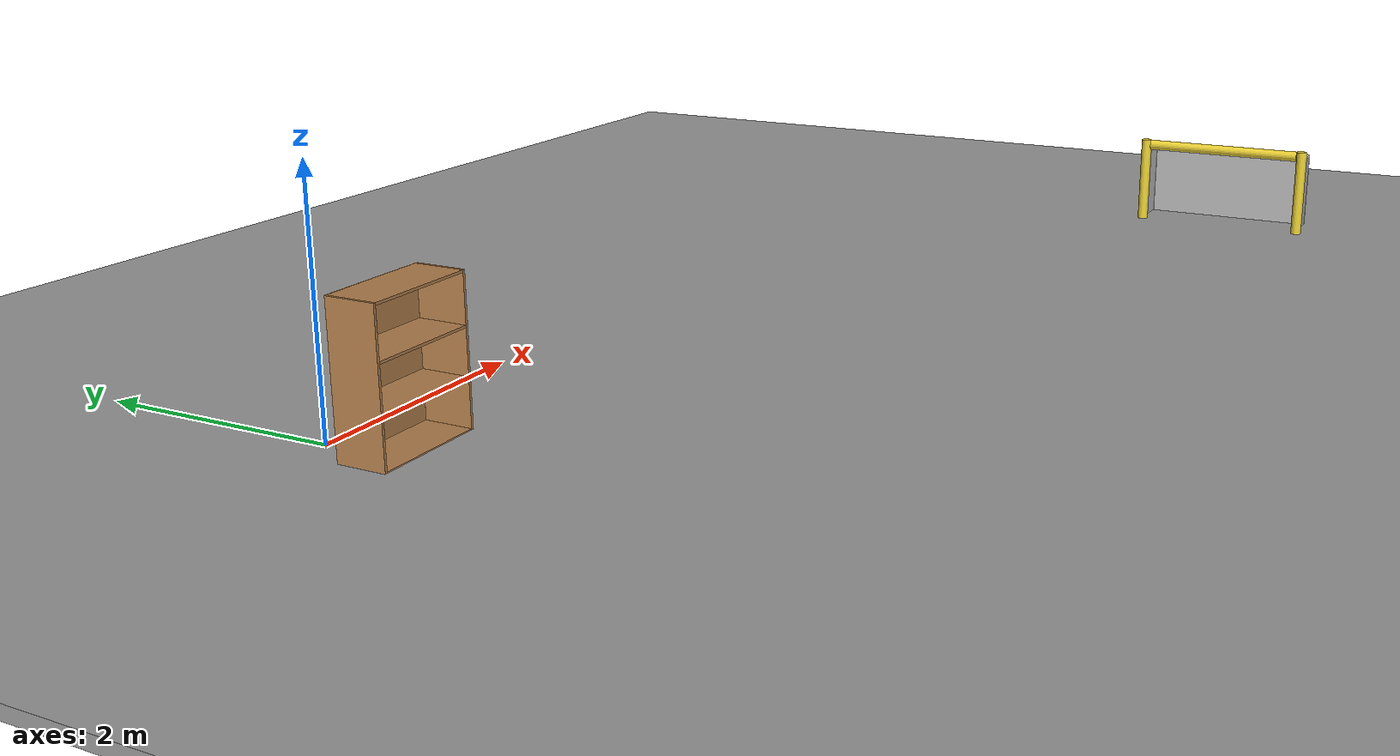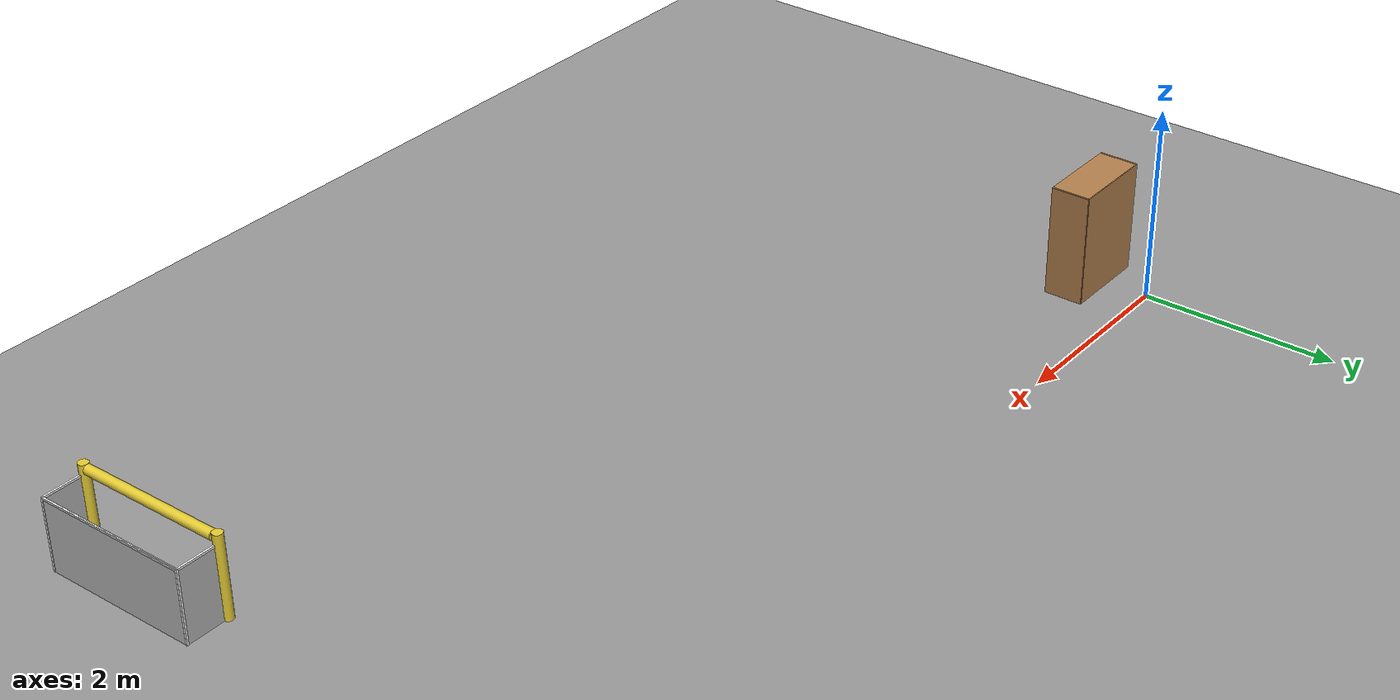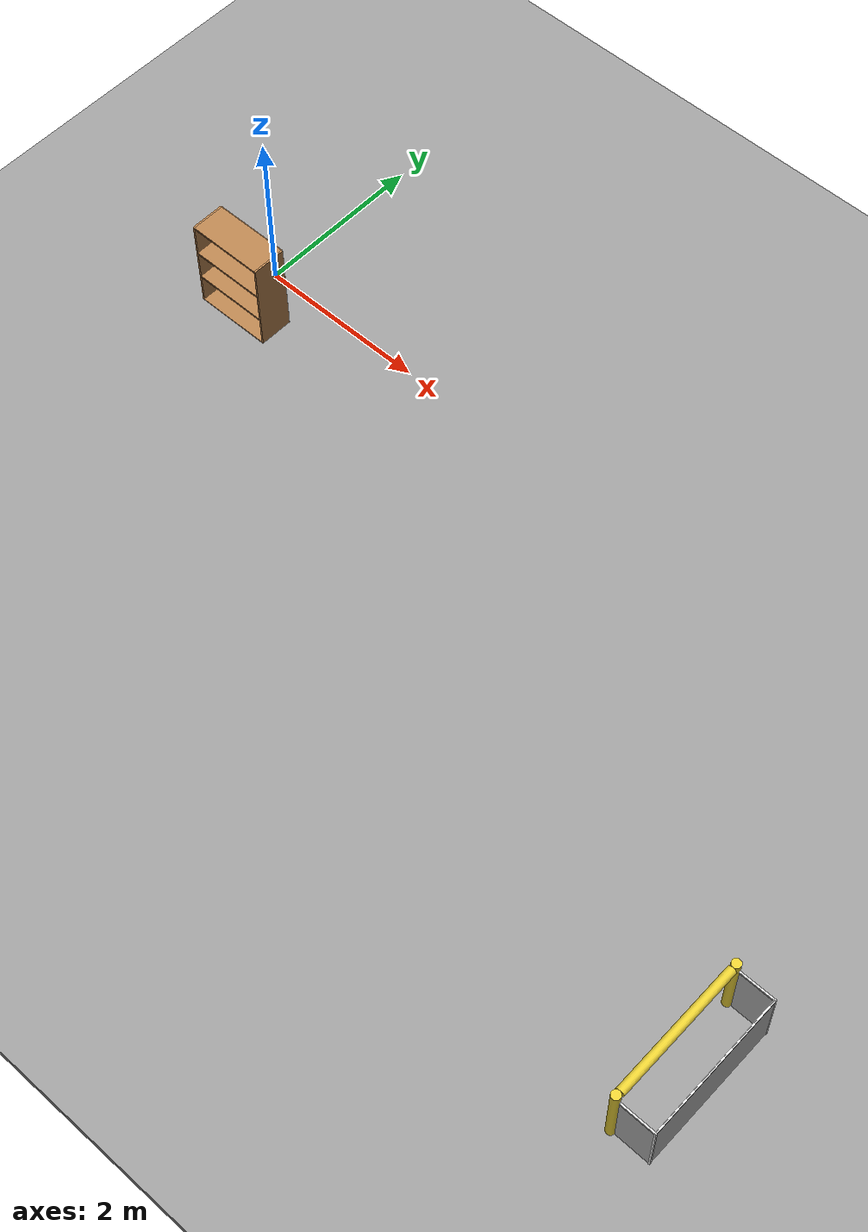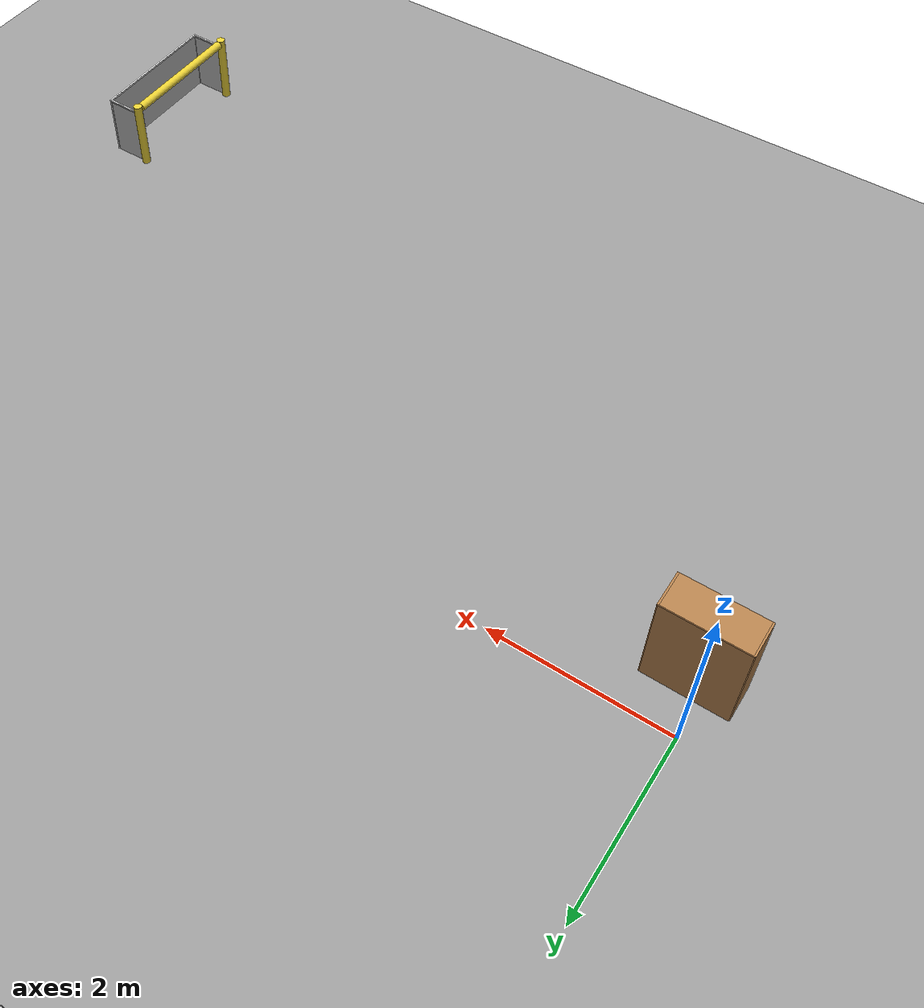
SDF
<sdf version="1.6">
 <world name="default">
  <model name="ground_plane">
   <static>1</static>
   <link name="link">
    <collision name="collision">
     <geometry><plane><normal>0 0 1</normal><size>100 100</size></plane></geometry>
     <surface><friction><ode><mu>100</mu><mu2>50</mu2></ode></friction></surface>
    </collision>
    <visual name="visual">
     <cast_shadows>0</cast_shadows>
     <geometry><plane><normal>0 0 1</normal><size>100 100</size></plane></geometry>
     <material>
      <script><uri>file://media/materials/scripts/gazebo.material</uri><name>Gazebo/Grey</name></script>
     </material>
    </visual>
   </link>
  </model>
  <model name="bookshelf">
   <static>1</static>
   <link name="link">
    <inertial><mass>1</mass></inertial>
    <collision name="back">
     <pose>0 0.005 0.6 0 -0 0</pose>
     <geometry><box><size>0.9 0.01 1.2</size></box></geometry>
    </collision>
    <visual name="visual1">
     <pose>0 0.005 0.6 0 -0 0</pose>
     <geometry><box><size>0.9 0.01 1.2</size></box></geometry>
     <material>
      <script><uri>file://media/materials/scripts/gazebo.material</uri><name>Gazebo/Wood</name></script>
     </material>
    </visual>
    <collision name="left_side">
     <pose>0.45 -0.195 0.6 0 -0 0</pose>
     <geometry><box><size>0.02 0.4 1.2</size></box></geometry>
    </collision>
    <visual name="visual2">
     <pose>0.45 -0.195 0.6 0 -0 0</pose>
     <geometry><box><size>0.02 0.4 1.2</size></box></geometry>
     <material>
      <script><uri>file://media/materials/scripts/gazebo.material</uri><name>Gazebo/Wood</name></script>
     </material>
    </visual>
    <collision name="right_side">
     <pose>-0.45 -0.195 0.6 0 -0 0</pose>
     <geometry><box><size>0.02 0.4 1.2</size></box></geometry>
    </collision>
    <visual name="visual3">
     <pose>-0.45 -0.195 0.6 0 -0 0</pose>
     <geometry><box><size>0.02 0.4 1.2</size></box></geometry>
     <material>
      <script><uri>file://media/materials/scripts/gazebo.material</uri><name>Gazebo/Wood</name></script>
     </material>
    </visual>
    <collision name="bottom">
     <pose>0 -0.195 0.03 0 -0 0</pose>
     <geometry><box><size>0.88 0.4 0.06</size></box></geometry>
    </collision>
    <visual name="visual4">
     <pose>0 -0.195 0.03 0 -0 0</pose>
     <geometry><box><size>0.88 0.4 0.06</size></box></geometry>
     <material>
      <script><uri>file://media/materials/scripts/gazebo.material</uri><name>Gazebo/Wood</name></script>
     </material>
    </visual>
    <collision name="top">
     <pose>0 -0.195 1.19 0 -0 0</pose>
     <geometry><box><size>0.88 0.4 0.02</size></box></geometry>
    </collision>
    <visual name="visual5">
     <pose>0 -0.195 1.19 0 -0 0</pose>
     <geometry><box><size>0.88 0.4 0.02</size></box></geometry>
     <material>
      <script><uri>file://media/materials/scripts/gazebo.material</uri><name>Gazebo/Wood</name></script>
     </material>
    </visual>
    <collision name="low_shelf">
     <pose>0 -0.195 0.43 0 -0 0</pose>
     <geometry><box><size>0.88 0.4 0.02</size></box></geometry>
    </collision>
    <visual name="visual6">
     <pose>0 -0.195 0.43 0 -0 0</pose>
     <geometry><box><size>0.88 0.4 0.02</size></box></geometry>
     <material>
      <script><uri>file://media/materials/scripts/gazebo.material</uri><name>Gazebo/Wood</name></script>
     </material>
    </visual>
    <collision name="high_shelf">
     <pose>0 -0.195 0.8 0 -0 0</pose>
     <geometry><box><size>0.88 0.4 0.02</size></box></geometry>
    </collision>
    <visual name="visual7">
     <pose>0 -0.195 0.8 0 -0 0</pose>
     <geometry><box><size>0.88 0.4 0.02</size></box></geometry>
     <material>
      <script><uri>file://media/materials/scripts/gazebo.material</uri><name>Gazebo/Wood</name></script>
     </material>
    </visual>
   </link>
   <pose>0.140039 -0.394425 0 0 -0 0</pose>
  </model>
  <model name="ground_plane_0">
   <static>1</static>
   <link name="link">
    <collision name="collision">
     <geometry><plane><normal>0 0 1</normal><size>100 100</size></plane></geometry>
     <surface><friction><ode><mu>100</mu><mu2>50</mu2></ode></friction></surface>
    </collision>
    <visual name="visual">
     <cast_shadows>0</cast_shadows>
     <geometry><plane><normal>0 0 1</normal><size>100 100</size></plane></geometry>
     <material>
      <script><uri>file://media/materials/scripts/gazebo.material</uri><name>Gazebo/Grey</name></script>
     </material>
    </visual>
   </link>
   <pose>11.2711 2.15134 0 0 -0 0</pose>
  </model>
  <model name="RoboCup 2014 SPL Goal">
   <static>1</static>
   <link name="left_post">
    <pose>0 0.8 0.45 0 -0 0</pose>
    <collision name="collision">
     <geometry><cylinder><radius>0.05</radius><length>0.9</length></cylinder></geometry>
    </collision>
    <visual name="visual">
     <geometry><cylinder><radius>0.05</radius><length>0.9</length></cylinder></geometry>
     <material>
      <script><uri>file://media/materials/scripts/gazebo.material</uri><name>Gazebo/ZincYellow</name></script>
     </material>
    </visual>
   </link>
   <link name="left_support_horiz_lower">
    <pose>0.24 0.8 0.01 0 -0 0</pose>
    <collision name="collision"><geometry><box><size>0.38 0.02 0.02</size></box></geometry></collision>
    <visual name="visual">
     <geometry><box><size>0.38 0.02 0.02</size></box></geometry>
     <material>
      <script><uri>file://media/materials/scripts/gazebo.material</uri><name>Gazebo/White</name></script>
     </material>
    </visual>
   </link>
   <link name="left_support_horiz_upper">
    <pose>0.24 0.8 0.79 0 -0 0</pose>
    <collision name="collision"><geometry><box><size>0.38 0.02 0.02</size></box></geometry></collision>
    <visual name="visual">
     <geometry><box><size>0.38 0.02 0.02</size></box></geometry>
     <material>
      <script><uri>file://media/materials/scripts/gazebo.material</uri><name>Gazebo/White</name></script>
     </material>
    </visual>
   </link>
   <link name="left_support_vertical">
    <pose>0.44 0.8 0.4 3.14159 1.57079 3.14159</pose>
    <collision name="collision"><geometry><box><size>0.8 0.02 0.02</size></box></geometry></collision>
    <visual name="visual">
     <geometry><box><size>0.8 0.02 0.02</size></box></geometry>
     <material>
      <script><uri>file://media/materials/scripts/gazebo.material</uri><name>Gazebo/White</name></script>
     </material>
    </visual>
   </link>
   <link name="right_support_horiz_lower">
    <pose>0.24 -0.8 0.01 0 -0 0</pose>
    <collision name="collision"><geometry><box><size>0.38 0.02 0.02</size></box></geometry></collision>
    <visual name="visual">
     <geometry><box><size>0.38 0.02 0.02</size></box></geometry>
     <material>
      <script><uri>file://media/materials/scripts/gazebo.material</uri><name>Gazebo/White</name></script>
     </material>
    </visual>
   </link>
   <link name="right_support_horiz_upper">
    <pose>0.24 -0.8 0.79 0 -0 0</pose>
    <collision name="collision"><geometry><box><size>0.38 0.02 0.02</size></box></geometry></collision>
    <visual name="visual">
     <geometry><box><size>0.38 0.02 0.02</size></box></geometry>
     <material>
      <script><uri>file://media/materials/scripts/gazebo.material</uri><name>Gazebo/White</name></script>
     </material>
    </visual>
   </link>
   <link name="right_support_vertical">
    <pose>0.44 -0.8 0.4 3.14159 1.57079 3.14159</pose>
    <collision name="collision"><geometry><box><size>0.8 0.02 0.02</size></box></geometry></collision>
    <visual name="visual">
     <geometry><box><size>0.8 0.02 0.02</size></box></geometry>
     <material>
      <script><uri>file://media/materials/scripts/gazebo.material</uri><name>Gazebo/White</name></script>
     </material>
    </visual>
   </link>
   <link name="center_support_horiz_lower">
    <pose>0.44 0 0.01 3.14159 1.57079 3.14159</pose>
    <collision name="collision"><geometry><box><size>0.02 1.58 0.02</size></box></geometry></collision>
    <visual name="visual">
     <geometry><box><size>0.02 1.58 0.02</size></box></geometry>
     <material>
      <script><uri>file://media/materials/scripts/gazebo.material</uri><name>Gazebo/White</name></script>
     </material>
    </visual>
   </link>
   <link name="center_support_horiz_upper">
    <pose>0.44 0 0.79 3.14159 1.57079 3.14159</pose>
    <collision name="collision"><geometry><box><size>0.02 1.58 0.02</size></box></geometry></collision>
    <visual name="visual">
     <geometry><box><size>0.02 1.58 0.02</size></box></geometry>
     <material>
      <script><uri>file://media/materials/scripts/gazebo.material</uri><name>Gazebo/White</name></script>
     </material>
    </visual>
   </link>
   <link name="right_post">
    <pose>0 -0.8 0.45 0 -0 0</pose>
    <collision name="collision">
     <geometry><cylinder><radius>0.05</radius><length>0.9</length></cylinder></geometry>
    </collision>
    <visual name="visual">
     <geometry><cylinder><radius>0.05</radius><length>0.9</length></cylinder></geometry>
     <material>
      <script><uri>file://media/materials/scripts/gazebo.material</uri><name>Gazebo/ZincYellow</name></script>
     </material>
    </visual>
   </link>
   <link name="crossbar">
    <pose>0 0 0.85 1.57 1.57 0</pose>
    <collision name="collision">
     <geometry><cylinder><radius>0.05</radius><length>1.5</length></cylinder></geometry>
    </collision>
    <visual name="visual">
     <geometry><cylinder><radius>0.05</radius><length>1.5</length></cylinder></geometry>
     <material>
      <script><uri>file://media/materials/scripts/gazebo.material</uri><name>Gazebo/ZincYellow</name></script>
     </material>
    </visual>
   </link>
   <link name="center_net">
    <pose>0.44 0 0.4 0 -0 0</pose>
    <collision name="collision"><geometry><box><size>0.01 1.6 0.8</size></box></geometry></collision>
    <visual name="visual">
     <geometry><box><size>0.01 1.6 0.8</size></box></geometry>
     <material>
      <script>
       <uri>model://robocup09_spl_field/materials/scripts/</uri>
       <uri>model://robocup09_spl_field/materials/textures/</uri>
       <name>RoboCup/Net</name>
      </script>
     </material>
    </visual>
   </link>
   <link name="left_net">
    <pose>0.24 0.8 0.4 0 -0 0</pose>
    <collision name="collision"><geometry><box><size>0.38 0.01 0.76</size></box></geometry></collision>
    <visual name="visual">
     <geometry><box><size>0.38 0.01 0.76</size></box></geometry>
     <material>
      <script>
       <uri>model://robocup09_spl_field/materials/scripts/</uri>
       <uri>model://robocup09_spl_field/materials/textures/</uri>
       <name>RoboCup/Net</name>
      </script>
     </material>
    </visual>
   </link>
   <link name="right_net">
    <pose>0.24 -0.8 0.4 0 -0 0</pose>
    <collision name="collision"><geometry><box><size>0.38 0.01 0.76</size></box></geometry></collision>
    <visual name="visual">
     <geometry><box><size>0.38 0.01 0.76</size></box></geometry>
     <material>
      <script>
       <uri>model://robocup09_spl_field/materials/scripts/</uri>
       <uri>model://robocup09_spl_field/materials/textures/</uri>
       <name>RoboCup/Net</name>
      </script>
     </material>
    </visual>
   </link>
   <pose>8.97564 -4.09229 0 0 -0 0</pose>
  </model>
 </world>
</sdf>
